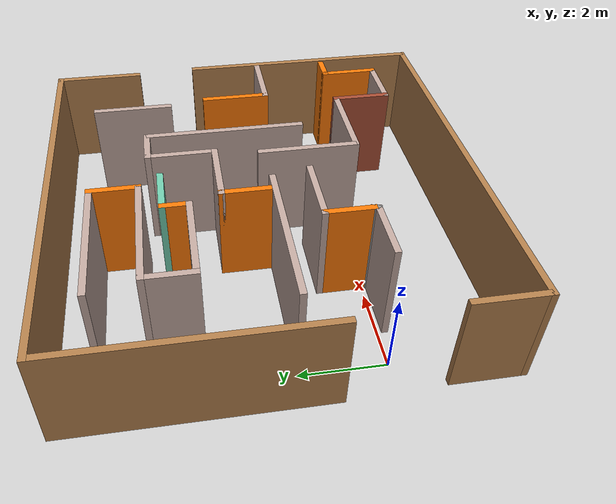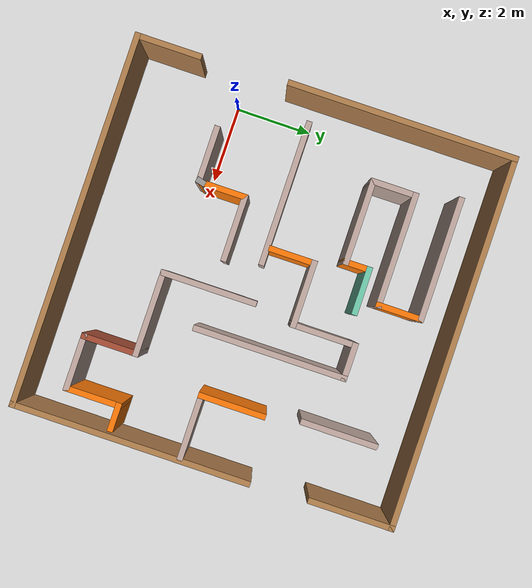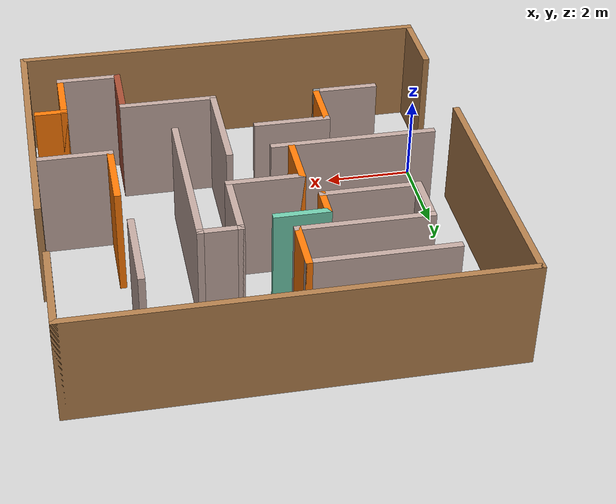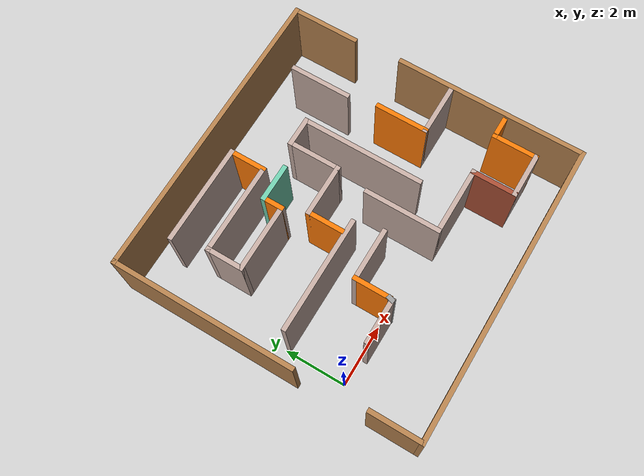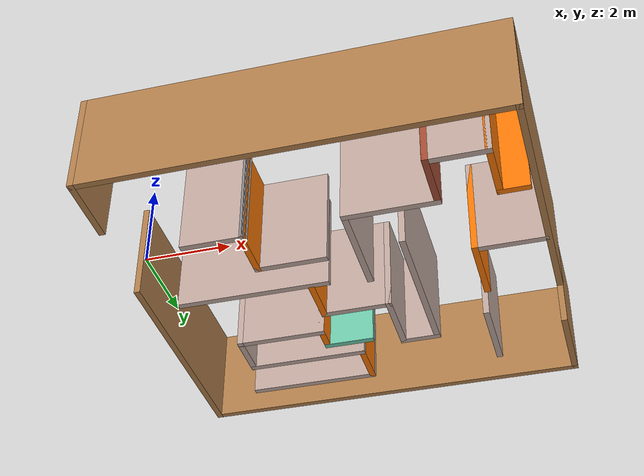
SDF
<?xml version='1.0'?>
<sdf version='1.7'>
  <model name='maze'>
    <pose>4.14741 2.12933 0 0 -0 0</pose>
    <link name='Wall_1'>
      <collision name='Wall_1_Collision'>
        <geometry>
          <box>
            <size>6 0.15 2.5</size>
          </box>
        </geometry>
        <pose>0 0 1.25 0 -0 0</pose>
      </collision>
      <visual name='Wall_1_Visual'>
        <pose>0 0 1.25 0 -0 0</pose>
        <geometry>
          <box>
            <size>6 0.15 2.5</size>
          </box>
        </geometry>
        <material>
          <script>
            <uri>file://media/materials/scripts/gazebo.material</uri>
            <name>Gazebo/Wood</name>
          </script>
          <ambient>1 1 1 1</ambient>
        </material>
        <meta>
          <layer>0</layer>
        </meta>
      </visual>
      <pose>-4.84463 1.98298 0 0 -0 1.5708</pose>
    </link>
    <link name='Wall_10'>
      <collision name='Wall_10_Collision'>
        <geometry>
          <box>
            <size>1.75 0.15 2.5</size>
          </box>
        </geometry>
        <pose>0 0 1.25 0 -0 0</pose>
      </collision>
      <visual name='Wall_10_Visual'>
        <pose>0 0 1.25 0 -0 0</pose>
        <geometry>
          <box>
            <size>1.75 0.15 2.5</size>
          </box>
        </geometry>
        <material>
          <script>
            <uri>file://media/materials/scripts/gazebo.material</uri>
            <name>Gazebo/Wood</name>
          </script>
          <ambient>1 1 1 1</ambient>
        </material>
        <meta>
          <layer>0</layer>
        </meta>
      </visual>
      <pose>-4.75537 -4.10799 0 0 -0 1.5708</pose>
    </link>
    <link name='Wall_12'>
      <collision name='Wall_12_Collision'>
        <geometry>
          <box>
            <size>3.75 0.15 2.5</size>
          </box>
        </geometry>
        <pose>0 0 1.25 0 -0 0</pose>
      </collision>
      <visual name='Wall_12_Visual'>
        <pose>0 0 1.25 0 -0 0</pose>
        <geometry>
          <box>
            <size>3.75 0.15 2.5</size>
          </box>
        </geometry>
        <material>
          <script>
            <uri>file://media/materials/scripts/gazebo.material</uri>
            <name>Gazebo/Grey</name>
          </script>
          <ambient>0.760784 0.662745 0.627451 1</ambient>
        </material>
        <meta>
          <layer>0</layer>
        </meta>
      </visual>
      <pose>-2.22654 -0.199301 0 0 -0 0</pose>
    </link>
    <link name='Wall_14'>
      <collision name='Wall_14_Collision'>
        <geometry>
          <box>
            <size>1.25 0.15 2.5</size>
          </box>
        </geometry>
        <pose>0 0 1.25 0 -0 0</pose>
      </collision>
      <visual name='Wall_14_Visual'>
        <pose>0 0 1.25 0 -0 0</pose>
        <geometry>
          <box>
            <size>1.25 0.15 2.5</size>
          </box>
        </geometry>
        <material>
          <script>
            <uri>file://media/materials/scripts/gazebo.material</uri>
            <name>Gazebo/Grey</name>
          </script>
          <ambient>0.996078 0.47451 0.0196078 1</ambient>
        </material>
        <meta>
          <layer>0</layer>
        </meta>
      </visual>
      <pose>-0.814564 0.47306 0 0 -0 1.5708</pose>
    </link>
    <link name='Wall_15'>
      <collision name='Wall_15_Collision'>
        <geometry>
          <box>
            <size>1.75 0.15 2.5</size>
          </box>
        </geometry>
        <pose>0 0 1.25 0 -0 0</pose>
      </collision>
      <visual name='Wall_15_Visual'>
        <pose>0 0 1.25 0 -0 0</pose>
        <geometry>
          <box>
            <size>1.75 0.15 2.5</size>
          </box>
        </geometry>
        <material>
          <script>
            <uri>file://media/materials/scripts/gazebo.material</uri>
            <name>Gazebo/Grey</name>
          </script>
          <ambient>0.760784 0.662745 0.627451 1</ambient>
        </material>
        <meta>
          <layer>0</layer>
        </meta>
      </visual>
      <pose>-0.014565 1.02306 0 0 -0 0</pose>
    </link>
    <link name='Wall_16'>
      <collision name='Wall_16_Collision'>
        <geometry>
          <box>
            <size>1.75 0.15 2.5</size>
          </box>
        </geometry>
        <pose>0 0 1.25 0 -0 0</pose>
      </collision>
      <visual name='Wall_16_Visual'>
        <pose>0 0 1.25 0 -0 0</pose>
        <geometry>
          <box>
            <size>1.75 0.15 2.5</size>
          </box>
        </geometry>
        <material>
          <script>
            <uri>file://media/materials/scripts/gazebo.material</uri>
            <name>Gazebo/Grey</name>
          </script>
          <ambient>0.760784 0.662745 0.627451 1</ambient>
        </material>
        <meta>
          <layer>0</layer>
        </meta>
      </visual>
      <pose>0.785435 1.82306 0 0 -0 1.5708</pose>
    </link>
    <link name='Wall_17'>
      <collision name='Wall_17_Collision'>
        <geometry>
          <box>
            <size>1 0.15 2.5</size>
          </box>
        </geometry>
        <pose>0 0 1.25 0 -0 0</pose>
      </collision>
      <visual name='Wall_17_Visual'>
        <pose>0 0 1.25 0 -0 0</pose>
        <geometry>
          <box>
            <size>1 0.15 2.5</size>
          </box>
        </geometry>
        <material>
          <script>
            <uri>file://media/materials/scripts/gazebo.material</uri>
            <name>Gazebo/Grey</name>
          </script>
          <ambient>0.760784 0.662745 0.627451 1</ambient>
        </material>
        <meta>
          <layer>0</layer>
        </meta>
      </visual>
      <pose>1.21043 2.62306 0 0 -0 0</pose>
    </link>
    <link name='Wall_18'>
      <collision name='Wall_18_Collision'>
        <geometry>
          <box>
            <size>4 0.15 2.5</size>
          </box>
        </geometry>
        <pose>0 0 1.25 0 -0 0</pose>
      </collision>
      <visual name='Wall_18_Visual'>
        <pose>0 0 1.25 0 -0 0</pose>
        <geometry>
          <box>
            <size>4 0.15 2.5</size>
          </box>
        </geometry>
        <material>
          <script>
            <uri>file://media/materials/scripts/gazebo.material</uri>
            <name>Gazebo/Grey</name>
          </script>
          <ambient>0.760784 0.662745 0.627451 1</ambient>
        </material>
        <meta>
          <layer>0</layer>
        </meta>
      </visual>
      <pose>1.63544 0.69806 0 0 -0 -1.5708</pose>
    </link>
    <link name='Wall_2'>
      <collision name='Wall_2_Collision'>
        <geometry>
          <box>
            <size>9.75 0.15 2.5</size>
          </box>
        </geometry>
        <pose>0 0 1.25 0 -0 0</pose>
      </collision>
      <visual name='Wall_2_Visual'>
        <pose>0 0 1.25 0 -0 0</pose>
        <geometry>
          <box>
            <size>9.75 0.15 2.5</size>
          </box>
        </geometry>
        <material>
          <script>
            <uri>file://media/materials/scripts/gazebo.material</uri>
            <name>Gazebo/Wood</name>
          </script>
          <ambient>1 1 1 1</ambient>
        </material>
        <meta>
          <layer>0</layer>
        </meta>
      </visual>
      <pose>-0.044628 4.90799 0 0 -0 0</pose>
    </link>
    <link name='Wall_23'>
      <collision name='Wall_23_Collision'>
        <geometry>
          <box>
            <size>2.5 0.15 2.5</size>
          </box>
        </geometry>
        <pose>0 0 1.25 0 -0 0</pose>
      </collision>
      <visual name='Wall_23_Visual'>
        <pose>0 0 1.25 0 -0 0</pose>
        <geometry>
          <box>
            <size>2.5 0.15 2.5</size>
          </box>
        </geometry>
        <material>
          <script>
            <uri>file://media/materials/scripts/gazebo.material</uri>
            <name>Gazebo/Grey</name>
          </script>
          <ambient>0.760784 0.662745 0.627451 1</ambient>
        </material>
        <meta>
          <layer>0</layer>
        </meta>
      </visual>
      <pose>0.592586 -1.25194 0 0 -0 -1.5708</pose>
    </link>
    <link name='Wall_24'>
      <collision name='Wall_24_Collision'>
        <geometry>
          <box>
            <size>2.25 0.15 2.5</size>
          </box>
        </geometry>
        <pose>0 0 1.25 0 -0 0</pose>
      </collision>
      <visual name='Wall_24_Visual'>
        <pose>0 0 1.25 0 -0 0</pose>
        <geometry>
          <box>
            <size>2.25 0.15 2.5</size>
          </box>
        </geometry>
        <material>
          <script>
            <uri>file://media/materials/scripts/gazebo.material</uri>
            <name>Gazebo/Grey</name>
          </script>
          <ambient>0.760784 0.662745 0.627451 1</ambient>
        </material>
        <meta>
          <layer>0</layer>
        </meta>
      </visual>
      <pose>1.64259 -2.42694 0 0 -0 0</pose>
    </link>
    <link name='Wall_25'>
      <collision name='Wall_25_Collision'>
        <geometry>
          <box>
            <size>1.5 0.15 2.5</size>
          </box>
        </geometry>
        <pose>0 0 1.25 0 -0 0</pose>
      </collision>
      <visual name='Wall_25_Visual'>
        <pose>0 0 1.25 0 -0 0</pose>
        <geometry>
          <box>
            <size>1.5 0.15 2.5</size>
          </box>
        </geometry>
        <material>
          <script>
            <uri>file://media/materials/scripts/gazebo.material</uri>
            <name>Gazebo/Bricks</name>
          </script>
          <ambient>1 1 1 1</ambient>
        </material>
        <meta>
          <layer>0</layer>
        </meta>
      </visual>
      <pose>2.69259 -3.10194 0 0 -0 -1.5708</pose>
    </link>
    <link name='Wall_26'>
      <collision name='Wall_26_Collision'>
        <geometry>
          <box>
            <size>1.5 0.15 2.5</size>
          </box>
        </geometry>
        <pose>0 0 1.25 0 -0 0</pose>
      </collision>
      <visual name='Wall_26_Visual'>
        <pose>0 0 1.25 0 -0 0</pose>
        <geometry>
          <box>
            <size>1.5 0.15 2.5</size>
          </box>
        </geometry>
        <material>
          <script>
            <uri>file://media/materials/scripts/gazebo.material</uri>
            <name>Gazebo/Grey</name>
          </script>
          <ambient>0.760784 0.662745 0.627451 1</ambient>
        </material>
        <meta>
          <layer>0</layer>
        </meta>
      </visual>
      <pose>3.36759 -3.77694 0 0 -0 0</pose>
    </link>
    <link name='Wall_27'>
      <collision name='Wall_27_Collision'>
        <geometry>
          <box>
            <size>1.5 0.15 2.5</size>
          </box>
        </geometry>
        <pose>0 0 1.25 0 -0 0</pose>
      </collision>
      <visual name='Wall_27_Visual'>
        <pose>0 0 1.25 0 -0 0</pose>
        <geometry>
          <box>
            <size>1.5 0.15 2.5</size>
          </box>
        </geometry>
        <material>
          <script>
            <uri>file://media/materials/scripts/gazebo.material</uri>
            <name>Gazebo/Grey</name>
          </script>
          <ambient>0.996078 0.47451 0.0196078 1</ambient>
        </material>
        <meta>
          <layer>0</layer>
        </meta>
      </visual>
      <pose>4.04259 -3.10194 0 0 -0 1.5708</pose>
    </link>
    <link name='Wall_28'>
      <collision name='Wall_28_Collision'>
        <geometry>
          <box>
            <size>0.75 0.15 2.5</size>
          </box>
        </geometry>
        <pose>0 0 1.25 0 -0 0</pose>
      </collision>
      <visual name='Wall_28_Visual'>
        <pose>0 0 1.25 0 -0 0</pose>
        <geometry>
          <box>
            <size>0.75 0.15 2.5</size>
          </box>
        </geometry>
        <material>
          <script>
            <uri>file://media/materials/scripts/gazebo.material</uri>
            <name>Gazebo/Grey</name>
          </script>
          <ambient>0.996078 0.47451 0.0196078 1</ambient>
        </material>
        <meta>
          <layer>0</layer>
        </meta>
      </visual>
      <pose>4.34259 -2.42694 0 0 -0 0</pose>
    </link>
    <link name='Wall_30'>
      <collision name='Wall_30_Collision'>
        <geometry>
          <box>
            <size>3.25 0.15 2.5</size>
          </box>
        </geometry>
        <pose>0 0 1.25 0 -0 0</pose>
      </collision>
      <visual name='Wall_30_Visual'>
        <pose>0 0 1.25 0 -0 0</pose>
        <geometry>
          <box>
            <size>3.25 0.15 2.5</size>
          </box>
        </geometry>
        <material>
          <script>
            <uri>file://media/materials/scripts/gazebo.material</uri>
            <name>Gazebo/Grey</name>
          </script>
          <ambient>0.760784 0.662745 0.627451 1</ambient>
        </material>
        <meta>
          <layer>0</layer>
        </meta>
      </visual>
      <pose>-1.89532 3.96097 0 0 -0 0</pose>
    </link>
    <link name='Wall_31'>
      <collision name='Wall_31_Collision'>
        <geometry>
          <box>
            <size>1.25 0.15 2.5</size>
          </box>
        </geometry>
        <pose>0 0 1.25 0 -0 0</pose>
      </collision>
      <visual name='Wall_31_Visual'>
        <pose>0 0 1.25 0 -0 0</pose>
        <geometry>
          <box>
            <size>1.25 0.15 2.5</size>
          </box>
        </geometry>
        <material>
          <script>
            <uri>file://media/materials/scripts/gazebo.material</uri>
            <name>Gazebo/Grey</name>
          </script>
          <ambient>0.996078 0.47451 0.0196078 1</ambient>
        </material>
        <meta>
          <layer>0</layer>
        </meta>
      </visual>
      <pose>-0.345324 3.41097 0 0 -0 -1.5708</pose>
    </link>
    <link name='Wall_32'>
      <collision name='Wall_32_Collision'>
        <geometry>
          <box>
            <size>3 0.15 2.5</size>
          </box>
        </geometry>
        <pose>0 0 1.25 0 -0 0</pose>
      </collision>
      <visual name='Wall_32_Visual'>
        <pose>0 0 1.25 0 -0 0</pose>
        <geometry>
          <box>
            <size>3 0.15 2.5</size>
          </box>
        </geometry>
        <material>
          <script>
            <uri>file://media/materials/scripts/gazebo.material</uri>
            <name>Gazebo/Grey</name>
          </script>
          <ambient>0.760784 0.662745 0.627451 1</ambient>
        </material>
        <meta>
          <layer>0</layer>
        </meta>
      </visual>
      <pose>-1.77032 2.86097 0 0 -0 3.14159</pose>
    </link>
    <link name='Wall_33'>
      <collision name='Wall_33_Collision'>
        <geometry>
          <box>
            <size>1.25 0.15 2.5</size>
          </box>
        </geometry>
        <pose>0 0 1.25 0 -0 0</pose>
      </collision>
      <visual name='Wall_33_Visual'>
        <pose>0 0 1.25 0 -0 0</pose>
        <geometry>
          <box>
            <size>1.25 0.15 2.5</size>
          </box>
        </geometry>
        <material>
          <script>
            <uri>file://media/materials/scripts/gazebo.material</uri>
            <name>Gazebo/Grey</name>
          </script>
          <ambient>0.760784 0.662745 0.627451 1</ambient>
        </material>
        <meta>
          <layer>0</layer>
        </meta>
      </visual>
      <pose>-3.19532 2.31097 0 0 -0 -1.5708</pose>
    </link>
    <link name='Wall_34'>
      <collision name='Wall_34_Collision'>
        <geometry>
          <box>
            <size>2.25 0.15 2.5</size>
          </box>
        </geometry>
        <pose>0 0 1.25 0 -0 0</pose>
      </collision>
      <visual name='Wall_34_Visual'>
        <pose>0 0 1.25 0 -0 0</pose>
        <geometry>
          <box>
            <size>2.25 0.15 2.5</size>
          </box>
        </geometry>
        <material>
          <script>
            <uri>file://media/materials/scripts/gazebo.material</uri>
            <name>Gazebo/Grey</name>
          </script>
          <ambient>0.760784 0.662745 0.627451 1</ambient>
        </material>
        <meta>
          <layer>0</layer>
        </meta>
      </visual>
      <pose>-2.14532 1.76097 0 0 -0 0</pose>
    </link>
    <link name='Wall_35'>
      <collision name='Wall_35_Collision'>
        <geometry>
          <box>
            <size>0.75 0.15 2.5</size>
          </box>
        </geometry>
        <pose>0 0 1.25 0 -0 0</pose>
      </collision>
      <visual name='Wall_35_Visual'>
        <pose>0 0 1.25 0 -0 0</pose>
        <geometry>
          <box>
            <size>0.75 0.15 2.5</size>
          </box>
        </geometry>
        <material>
          <script>
            <uri>file://media/materials/scripts/gazebo.material</uri>
            <name>Gazebo/Grey</name>
          </script>
          <ambient>0.996078 0.47451 0.0196078 1</ambient>
        </material>
        <meta>
          <layer>0</layer>
        </meta>
      </visual>
      <pose>-1.09532 2.06097 0 0 -0 1.5708</pose>
    </link>
    <link name='Wall_36'>
      <collision name='Wall_36_Collision'>
        <geometry>
          <box>
            <size>1.25 0.15 2.5</size>
          </box>
        </geometry>
        <pose>0 0 1.25 0 -0 0</pose>
      </collision>
      <visual name='Wall_36_Visual'>
        <pose>0 0 1.25 0 -0 0</pose>
        <geometry>
          <box>
            <size>1.25 0.15 2.5</size>
          </box>
        </geometry>
        <material>
          <script>
            <uri>file://media/materials/scripts/gazebo.material</uri>
            <name>Gazebo/Grey</name>
          </script>
          <ambient>0.435294 0.796078 0.67451 1</ambient>
        </material>
        <meta>
          <layer>0</layer>
        </meta>
      </visual>
      <pose>-0.545324 2.36097 0 0 -0 0</pose>
    </link>
    <link name='Wall_38'>
      <collision name='Wall_38_Collision'>
        <geometry>
          <box>
            <size>2 0.15 2.5</size>
          </box>
        </geometry>
        <pose>0 0 1.25 0 -0 0</pose>
      </collision>
      <visual name='Wall_38_Visual'>
        <pose>0 0 1.25 0 -0 0</pose>
        <geometry>
          <box>
            <size>2 0.15 2.5</size>
          </box>
        </geometry>
        <material>
          <script>
            <uri>file://media/materials/scripts/gazebo.material</uri>
            <name>Gazebo/Grey</name>
          </script>
          <ambient>0.760784 0.662745 0.627451 1</ambient>
        </material>
        <meta>
          <layer>0</layer>
        </meta>
      </visual>
      <pose>2.97862 2.9442 0 0 -0 -1.5708</pose>
    </link>
    <link name='Wall_40'>
      <collision name='Wall_40_Collision'>
        <geometry>
          <box>
            <size>1.75 0.15 2.5</size>
          </box>
        </geometry>
        <pose>0 0 1.25 0 -0 0</pose>
      </collision>
      <visual name='Wall_40_Visual'>
        <pose>0 0 1.25 0 -0 0</pose>
        <geometry>
          <box>
            <size>1.75 0.15 2.5</size>
          </box>
        </geometry>
        <material>
          <script>
            <uri>file://media/materials/scripts/gazebo.material</uri>
            <name>Gazebo/Grey</name>
          </script>
          <ambient>0.996078 0.47451 0.0196078 1</ambient>
        </material>
        <meta>
          <layer>0</layer>
        </meta>
      </visual>
      <pose>3.16216 0.224308 0 0 -0 -1.5708</pose>
    </link>
    <link name='Wall_41'>
      <collision name='Wall_41_Collision'>
        <geometry>
          <box>
            <size>1.75 0.15 2.5</size>
          </box>
        </geometry>
        <pose>0 0 1.25 0 -0 0</pose>
      </collision>
      <visual name='Wall_41_Visual'>
        <pose>0 0 1.25 0 -0 0</pose>
        <geometry>
          <box>
            <size>1.75 0.15 2.5</size>
          </box>
        </geometry>
        <material>
          <script>
            <uri>file://media/materials/scripts/gazebo.material</uri>
            <name>Gazebo/Grey</name>
          </script>
          <ambient>0.760784 0.662745 0.627451 1</ambient>
        </material>
        <meta>
          <layer>0</layer>
        </meta>
      </visual>
      <pose>3.96217 -0.575692 0 0 -0 0</pose>
    </link>
    <link name='Wall_43'>
      <collision name='Wall_43_Collision'>
        <geometry>
          <box>
            <size>1.75 0.15 2.5</size>
          </box>
        </geometry>
        <pose>0 0 1.25 0 -0 0</pose>
      </collision>
      <visual name='Wall_43_Visual'>
        <pose>0 0 1.25 0 -0 0</pose>
        <geometry>
          <box>
            <size>1.75 0.15 2.5</size>
          </box>
        </geometry>
        <material>
          <script>
            <uri>file://media/materials/scripts/gazebo.material</uri>
            <name>Gazebo/Grey</name>
          </script>
          <ambient>0.760784 0.662745 0.627451 1</ambient>
        </material>
        <meta>
          <layer>0</layer>
        </meta>
      </visual>
      <pose>-1.01859 -1.11701 0 0 -0 3.14159</pose>
    </link>
    <link name='Wall_44'>
      <collision name='Wall_44_Collision'>
        <geometry>
          <box>
            <size>1.25 0.15 2.5</size>
          </box>
        </geometry>
        <pose>0 0 1.25 0 -0 0</pose>
      </collision>
      <visual name='Wall_44_Visual'>
        <pose>0 0 1.25 0 -0 0</pose>
        <geometry>
          <box>
            <size>1.25 0.15 2.5</size>
          </box>
        </geometry>
        <material>
          <script>
            <uri>file://media/materials/scripts/gazebo.material</uri>
            <name>Gazebo/Grey</name>
          </script>
          <ambient>0.996078 0.47451 0.0196078 1</ambient>
        </material>
        <meta>
          <layer>0</layer>
        </meta>
      </visual>
      <pose>-1.81859 -1.66701 0 0 -0 -1.5708</pose>
    </link>
    <link name='Wall_45'>
      <collision name='Wall_45_Collision'>
        <geometry>
          <box>
            <size>0.25 0.15 2.5</size>
          </box>
        </geometry>
        <pose>0 0 1.25 0 -0 0</pose>
      </collision>
      <visual name='Wall_45_Visual'>
        <pose>0 0 1.25 0 -0 0</pose>
        <geometry>
          <box>
            <size>0.25 0.15 2.5</size>
          </box>
        </geometry>
        <material>
          <script>
            <uri>file://media/materials/scripts/gazebo.material</uri>
            <name>Gazebo/Grey</name>
          </script>
          <ambient>1 1 1 1</ambient>
        </material>
        <meta>
          <layer>0</layer>
        </meta>
      </visual>
      <pose>-1.83154 -2.2653 0 0 -0 -1.8326</pose>
    </link>
    <link name='Wall_46'>
      <collision name='Wall_46_Collision'>
        <geometry>
          <box>
            <size>1.5 0.15 2.5</size>
          </box>
        </geometry>
        <pose>0 0 1.25 0 -0 0</pose>
      </collision>
      <visual name='Wall_46_Visual'>
        <pose>0 0 1.25 0 -0 0</pose>
        <geometry>
          <box>
            <size>1.5 0.15 2.5</size>
          </box>
        </geometry>
        <material>
          <script>
            <uri>file://media/materials/scripts/gazebo.material</uri>
            <name>Gazebo/Grey</name>
          </script>
          <ambient>0.760784 0.662745 0.627451 1</ambient>
        </material>
        <meta>
          <layer>0</layer>
        </meta>
      </visual>
      <pose>-2.51948 -2.3136 0 0 -0 3.14159</pose>
    </link>
    <link name='Wall_6'>
      <collision name='Wall_6_Collision'>
        <geometry>
          <box>
            <size>2.25 0.15 2.5</size>
          </box>
        </geometry>
        <pose>0 0 1.25 0 -0 0</pose>
      </collision>
      <visual name='Wall_6_Visual'>
        <pose>0 0 1.25 0 -0 0</pose>
        <geometry>
          <box>
            <size>2.25 0.15 2.5</size>
          </box>
        </geometry>
        <material>
          <script>
            <uri>file://media/materials/scripts/gazebo.material</uri>
            <name>Gazebo/Wood</name>
          </script>
          <ambient>1 1 1 1</ambient>
        </material>
        <meta>
          <layer>0</layer>
        </meta>
      </visual>
      <pose>4.75537 3.85799 0 0 -0 -1.5708</pose>
    </link>
    <link name='Wall_8'>
      <collision name='Wall_8_Collision'>
        <geometry>
          <box>
            <size>6.25 0.15 2.5</size>
          </box>
        </geometry>
        <pose>0 0 1.25 0 -0 0</pose>
      </collision>
      <visual name='Wall_8_Visual'>
        <pose>0 0 1.25 0 -0 0</pose>
        <geometry>
          <box>
            <size>6.25 0.15 2.5</size>
          </box>
        </geometry>
        <material>
          <script>
            <uri>file://media/materials/scripts/gazebo.material</uri>
            <name>Gazebo/Wood</name>
          </script>
          <ambient>1 1 1 1</ambient>
        </material>
        <meta>
          <layer>0</layer>
        </meta>
      </visual>
      <pose>4.84463 -1.85798 0 0 -0 -1.5708</pose>
    </link>
    <link name='Wall_9'>
      <collision name='Wall_9_Collision'>
        <geometry>
          <box>
            <size>9.75 0.15 2.5</size>
          </box>
        </geometry>
        <pose>0 0 1.25 0 -0 0</pose>
      </collision>
      <visual name='Wall_9_Visual'>
        <pose>0 0 1.25 0 -0 0</pose>
        <geometry>
          <box>
            <size>9.75 0.15 2.5</size>
          </box>
        </geometry>
        <material>
          <script>
            <uri>file://media/materials/scripts/gazebo.material</uri>
            <name>Gazebo/Wood</name>
          </script>
          <ambient>1 1 1 1</ambient>
        </material>
        <meta>
          <layer>0</layer>
        </meta>
      </visual>
      <pose>0.044628 -4.90799 0 0 -0 3.14159</pose>
    </link>
    <static>1</static>
  </model>
</sdf>
